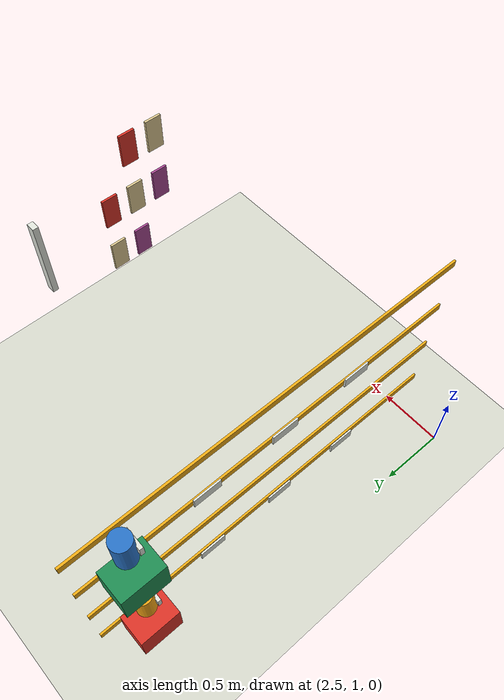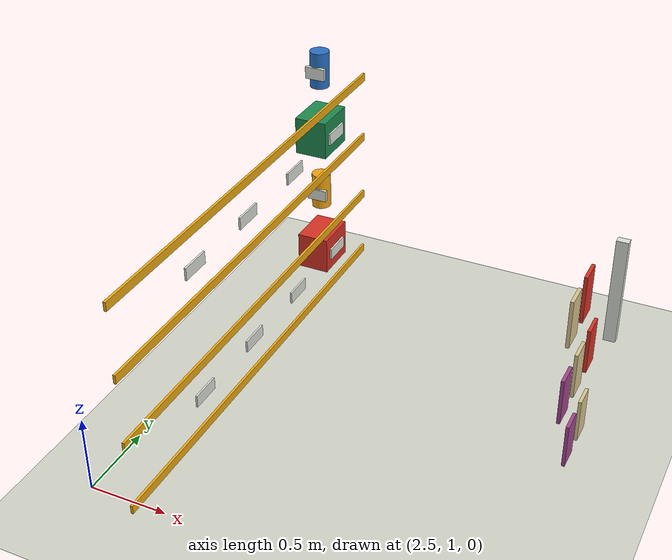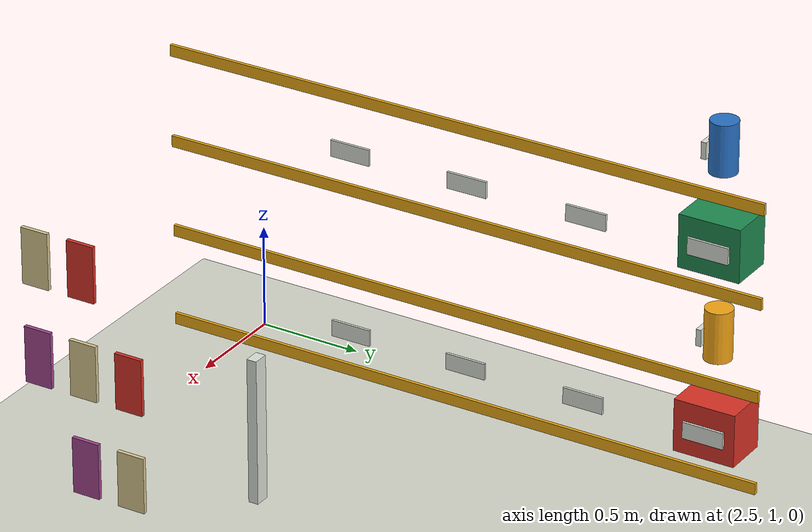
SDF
<sdf version="1.6">
 <world name="convenience_store">
  <model name="ground_plane">
   <static>true</static>
   <link name="ground_link">
    <collision name="ground_collision">
     <geometry><plane><normal>0 0 1</normal><size>100 100</size></plane></geometry>
     <surface><friction><ode><mu>1.0</mu><mu2>1.0</mu2></ode></friction></surface>
    </collision>
    <visual name="ground_visual">
     <geometry><plane><normal>0 0 1</normal><size>100 100</size></plane></geometry>
     <material><ambient>.84 .85 .80 1</ambient><diffuse>.84 .85 .80 1</diffuse></material>
    </visual>
   </link>
  </model>
  <model name="gondola_2_price_0_1">
   <static>true</static>
   <pose>2.93 2.3 0.17500000000000002 0 0 0</pose>
   <link name="body">
    <visual name="body_visual">
     <geometry><box><size>0.016 3.0 0.055</size></box></geometry>
     <material><ambient>.95 .68 .08 1</ambient><diffuse>.95 .68 .08 1</diffuse></material>
    </visual>
   </link>
  </model>
  <model name="gondola_2_goods_0_1_1_label">
   <static>true</static>
   <pose>2.866 1.6999999999999997 0.32 0 0 0</pose>
   <link name="body">
    <visual name="body_visual">
     <geometry><box><size>0.012 0.2 0.08</size></box></geometry>
     <material><ambient>.88 .90 .86 1</ambient><diffuse>.88 .90 .86 1</diffuse></material>
    </visual>
   </link>
  </model>
  <model name="gondola_2_goods_0_1_2_label">
   <static>true</static>
   <pose>2.866 2.3 0.32 0 0 0</pose>
   <link name="body">
    <visual name="body_visual">
     <geometry><box><size>0.012 0.2 0.08</size></box></geometry>
     <material><ambient>.88 .90 .86 1</ambient><diffuse>.88 .90 .86 1</diffuse></material>
    </visual>
   </link>
  </model>
  <model name="gondola_2_goods_0_1_3_label">
   <static>true</static>
   <pose>2.866 2.8999999999999995 0.32 0 0 0</pose>
   <link name="body">
    <visual name="body_visual">
     <geometry><box><size>0.012 0.2 0.08</size></box></geometry>
     <material><ambient>.88 .90 .86 1</ambient><diffuse>.88 .90 .86 1</diffuse></material>
    </visual>
   </link>
  </model>
  <model name="gondola_2_goods_0_1_4">
   <static>true</static>
   <pose>2.75 3.5 0.3275 0 0 0</pose>
   <link name="body">
    <collision name="body_collision">
     <geometry><box><size>0.22 0.3 0.255</size></box></geometry>
     <surface><friction><ode><mu>.8</mu><mu2>.8</mu2></ode></friction></surface>
    </collision>
    <visual name="body_visual">
     <geometry><box><size>0.22 0.3 0.255</size></box></geometry>
     <material><ambient>.86 .20 .15 1</ambient><diffuse>.86 .20 .15 1</diffuse></material>
    </visual>
   </link>
  </model>
  <model name="gondola_2_goods_0_1_4_label">
   <static>true</static>
   <pose>2.866 3.5 0.32 0 0 0</pose>
   <link name="body">
    <visual name="body_visual">
     <geometry><box><size>0.012 0.2 0.08</size></box></geometry>
     <material><ambient>.88 .90 .86 1</ambient><diffuse>.88 .90 .86 1</diffuse></material>
    </visual>
   </link>
  </model>
  <model name="gondola_2_price_1_1">
   <static>true</static>
   <pose>2.93 2.3 0.625 0 0 0</pose>
   <link name="body">
    <visual name="body_visual">
     <geometry><box><size>0.016 3.0 0.055</size></box></geometry>
     <material><ambient>.95 .68 .08 1</ambient><diffuse>.95 .68 .08 1</diffuse></material>
    </visual>
   </link>
  </model>
  <model name="gondola_2_goods_1_1_4">
   <static>true</static>
   <pose>2.75 3.5 0.7725 0 0 0</pose>
   <link name="body">
    <collision name="body_collision">
     <geometry><cylinder><length>0.245</length><radius>0.065</radius></cylinder></geometry>
     <surface><friction><ode><mu>.8</mu><mu2>.8</mu2></ode></friction></surface>
    </collision>
    <visual name="body_visual">
     <geometry><cylinder><length>0.245</length><radius>0.065</radius></cylinder></geometry>
     <material><ambient>.96 .65 .08 1</ambient><diffuse>.96 .65 .08 1</diffuse></material>
    </visual>
   </link>
  </model>
  <model name="gondola_2_goods_1_1_4_label">
   <static>true</static>
   <pose>2.75 3.438 0.76 0 0 0</pose>
   <link name="body">
    <visual name="body_visual">
     <geometry><box><size>0.135 0.025 0.08</size></box></geometry>
     <material><ambient>.88 .90 .86 1</ambient><diffuse>.88 .90 .86 1</diffuse></material>
    </visual>
   </link>
  </model>
  <model name="gondola_2_price_2_1">
   <static>true</static>
   <pose>2.93 2.3 1.0750000000000002 0 0 0</pose>
   <link name="body">
    <visual name="body_visual">
     <geometry><box><size>0.016 3.0 0.055</size></box></geometry>
     <material><ambient>.95 .68 .08 1</ambient><diffuse>.95 .68 .08 1</diffuse></material>
    </visual>
   </link>
  </model>
  <model name="gondola_2_goods_2_1_1_label">
   <static>true</static>
   <pose>2.866 1.6999999999999997 1.2200000000000002 0 0 0</pose>
   <link name="body">
    <visual name="body_visual">
     <geometry><box><size>0.012 0.2 0.08</size></box></geometry>
     <material><ambient>.88 .90 .86 1</ambient><diffuse>.88 .90 .86 1</diffuse></material>
    </visual>
   </link>
  </model>
  <model name="gondola_2_goods_2_1_2_label">
   <static>true</static>
   <pose>2.866 2.3 1.2200000000000002 0 0 0</pose>
   <link name="body">
    <visual name="body_visual">
     <geometry><box><size>0.012 0.2 0.08</size></box></geometry>
     <material><ambient>.88 .90 .86 1</ambient><diffuse>.88 .90 .86 1</diffuse></material>
    </visual>
   </link>
  </model>
  <model name="gondola_2_goods_2_1_3_label">
   <static>true</static>
   <pose>2.866 2.8999999999999995 1.2200000000000002 0 0 0</pose>
   <link name="body">
    <visual name="body_visual">
     <geometry><box><size>0.012 0.2 0.08</size></box></geometry>
     <material><ambient>.88 .90 .86 1</ambient><diffuse>.88 .90 .86 1</diffuse></material>
    </visual>
   </link>
  </model>
  <model name="gondola_2_goods_2_1_4">
   <static>true</static>
   <pose>2.75 3.5 1.2275 0 0 0</pose>
   <link name="body">
    <collision name="body_collision">
     <geometry><box><size>0.22 0.3 0.255</size></box></geometry>
     <surface><friction><ode><mu>.8</mu><mu2>.8</mu2></ode></friction></surface>
    </collision>
    <visual name="body_visual">
     <geometry><box><size>0.22 0.3 0.255</size></box></geometry>
     <material><ambient>.12 .55 .32 1</ambient><diffuse>.12 .55 .32 1</diffuse></material>
    </visual>
   </link>
  </model>
  <model name="gondola_2_goods_2_1_4_label">
   <static>true</static>
   <pose>2.866 3.5 1.2200000000000002 0 0 0</pose>
   <link name="body">
    <visual name="body_visual">
     <geometry><box><size>0.012 0.2 0.08</size></box></geometry>
     <material><ambient>.88 .90 .86 1</ambient><diffuse>.88 .90 .86 1</diffuse></material>
    </visual>
   </link>
  </model>
  <model name="gondola_2_price_3_1">
   <static>true</static>
   <pose>2.93 2.3 1.5250000000000001 0 0 0</pose>
   <link name="body">
    <visual name="body_visual">
     <geometry><box><size>0.016 3.0 0.055</size></box></geometry>
     <material><ambient>.95 .68 .08 1</ambient><diffuse>.95 .68 .08 1</diffuse></material>
    </visual>
   </link>
  </model>
  <model name="gondola_2_goods_3_1_4">
   <static>true</static>
   <pose>2.75 3.5 1.6725 0 0 0</pose>
   <link name="body">
    <collision name="body_collision">
     <geometry><cylinder><length>0.245</length><radius>0.065</radius></cylinder></geometry>
     <surface><friction><ode><mu>.8</mu><mu2>.8</mu2></ode></friction></surface>
    </collision>
    <visual name="body_visual">
     <geometry><cylinder><length>0.245</length><radius>0.065</radius></cylinder></geometry>
     <material><ambient>.16 .45 .78 1</ambient><diffuse>.16 .45 .78 1</diffuse></material>
    </visual>
   </link>
  </model>
  <model name="gondola_2_goods_3_1_4_label">
   <static>true</static>
   <pose>2.75 3.438 1.6600000000000001 0 0 0</pose>
   <link name="body">
    <visual name="body_visual">
     <geometry><box><size>0.135 0.025 0.08</size></box></geometry>
     <material><ambient>.88 .90 .86 1</ambient><diffuse>.88 .90 .86 1</diffuse></material>
    </visual>
   </link>
  </model>
  <model name="fridge_1_drink_0_3">
   <static>true</static>
   <pose>5.05 1.7750000000000001 0.7 0 0 0</pose>
   <link name="body">
    <visual name="body_visual">
     <geometry><box><size>0.018 0.13 0.26</size></box></geometry>
     <material><ambient>.65 .28 .57 1</ambient><diffuse>.65 .28 .57 1</diffuse></material>
    </visual>
   </link>
  </model>
  <model name="fridge_1_drink_0_4">
   <static>true</static>
   <pose>5.05 2.0 0.7 0 0 0</pose>
   <link name="body">
    <visual name="body_visual">
     <geometry><box><size>0.018 0.13 0.26</size></box></geometry>
     <material><ambient>.87 .79 .57 1</ambient><diffuse>.87 .79 .57 1</diffuse></material>
    </visual>
   </link>
  </model>
  <model name="fridge_1_drink_1_2">
   <static>true</static>
   <pose>5.05 1.55 1.16 0 0 0</pose>
   <link name="body">
    <visual name="body_visual">
     <geometry><box><size>0.018 0.13 0.26</size></box></geometry>
     <material><ambient>.65 .28 .57 1</ambient><diffuse>.65 .28 .57 1</diffuse></material>
    </visual>
   </link>
  </model>
  <model name="fridge_1_drink_1_3">
   <static>true</static>
   <pose>5.05 1.7750000000000001 1.16 0 0 0</pose>
   <link name="body">
    <visual name="body_visual">
     <geometry><box><size>0.018 0.13 0.26</size></box></geometry>
     <material><ambient>.87 .79 .57 1</ambient><diffuse>.87 .79 .57 1</diffuse></material>
    </visual>
   </link>
  </model>
  <model name="fridge_1_drink_1_4">
   <static>true</static>
   <pose>5.05 2.0 1.16 0 0 0</pose>
   <link name="body">
    <visual name="body_visual">
     <geometry><box><size>0.018 0.13 0.26</size></box></geometry>
     <material><ambient>.86 .20 .15 1</ambient><diffuse>.86 .20 .15 1</diffuse></material>
    </visual>
   </link>
  </model>
  <model name="fridge_1_drink_2_2">
   <static>true</static>
   <pose>5.05 1.55 1.62 0 0 0</pose>
   <link name="body">
    <visual name="body_visual">
     <geometry><box><size>0.018 0.13 0.26</size></box></geometry>
     <material><ambient>.87 .79 .57 1</ambient><diffuse>.87 .79 .57 1</diffuse></material>
    </visual>
   </link>
  </model>
  <model name="fridge_1_drink_2_3">
   <static>true</static>
   <pose>5.05 1.7750000000000001 1.62 0 0 0</pose>
   <link name="body">
    <visual name="body_visual">
     <geometry><box><size>0.018 0.13 0.26</size></box></geometry>
     <material><ambient>.86 .20 .15 1</ambient><diffuse>.86 .20 .15 1</diffuse></material>
    </visual>
   </link>
  </model>
  <model name="fridge_2_handle">
   <static>true</static>
   <pose>5.03 2.6100000000000003 1.12 0 0 0</pose>
   <link name="body">
    <collision name="body_collision">
     <geometry><box><size>0.07 0.045 0.66</size></box></geometry>
     <surface><friction><ode><mu>.8</mu><mu2>.8</mu2></ode></friction></surface>
    </collision>
    <visual name="body_visual">
     <geometry><box><size>0.07 0.045 0.66</size></box></geometry>
     <material><ambient>.88 .90 .86 1</ambient><diffuse>.88 .90 .86 1</diffuse></material>
    </visual>
   </link>
  </model>
 </world>
</sdf>
